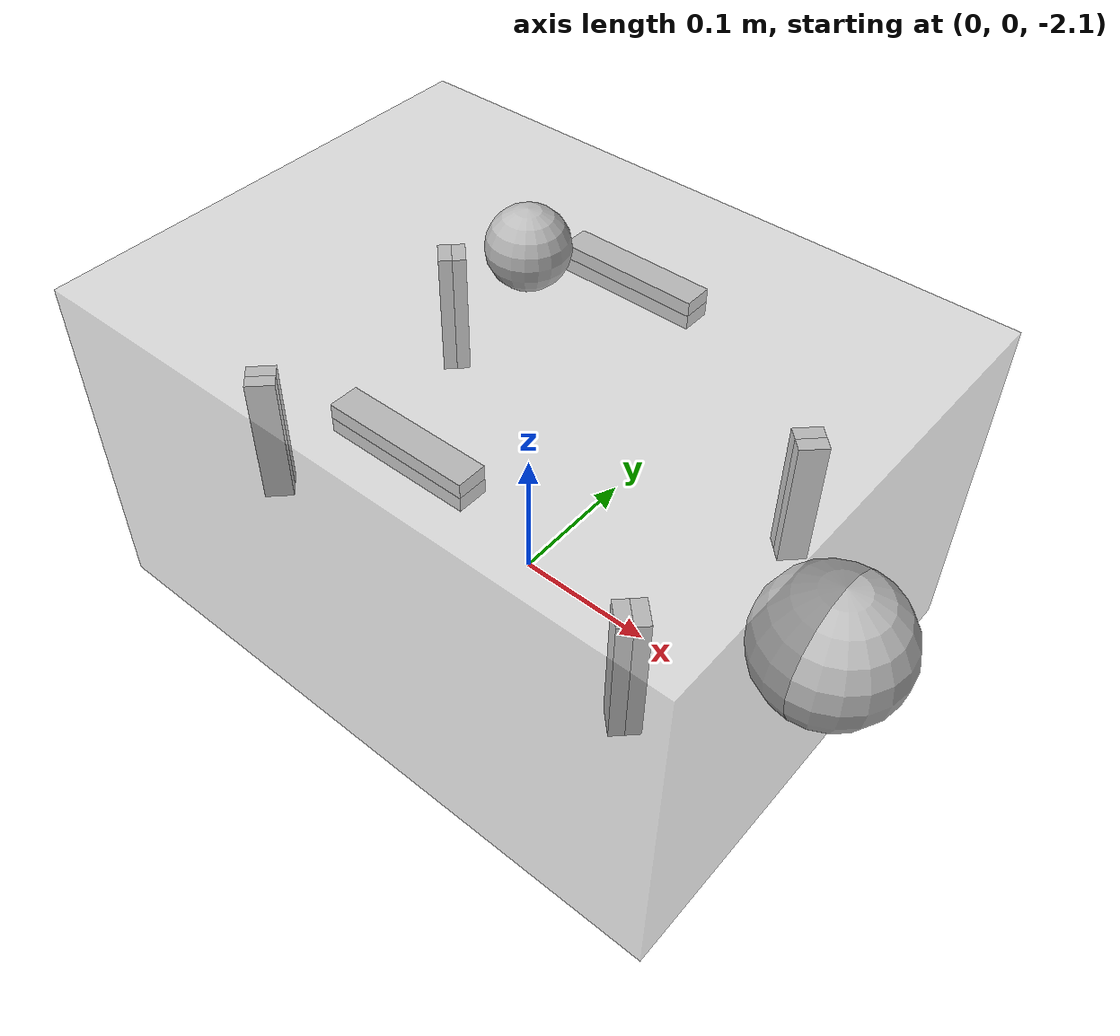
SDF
<sdf version="1.6">
 <world name="underwater">
  <plugin filename="ignition-gazebo-physics-system" name="ignition::gazebo::systems::Physics"/>
  <plugin filename="ignition-gazebo-sensors-system" name="ignition::gazebo::systems::Sensors">
   <render_engine>ogre2</render_engine>
   <background_color>0.8 0.8 0.8</background_color>
  </plugin>
  <plugin filename="ignition-gazebo-scene-broadcaster-system" name="ignition::gazebo::systems::SceneBroadcaster"/>
  <plugin filename="ignition-gazebo-user-commands-system" name="ignition::gazebo::systems::UserCommands"/>
  <plugin filename="libignition-gazebo-imu-system.so" name="ignition::gazebo::systems::Imu"/>
  <scene><ambient>1.0 1.0 1.0</ambient><background>0.8 0.8 0.8</background></scene>
  <include><uri>https://fuel.ignitionrobotics.org/1.0/OpenRobotics/models/Sun</uri></include>
  <include><uri>model://bluerov2</uri><pose>0 0 -2 0 0 0</pose></include>
 </world>
</sdf>

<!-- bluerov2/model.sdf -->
<sdf version="1.6">
  <model name="bluerov2">
    <pose>0 0 0 0 0 0</pose>

    <!-- BlueROV2 thruster reference: http://www.ardusub.com/introduction/features.html -->
    <!-- fluid_density: 1000 -->
    <!-- displaced_mass: 10.05 -->

    <link name="base_link">
      <inertial>
        <pose>0 0 -0.01 0 0 0</pose>
        <mass>10.0</mass>
        <inertia>
          <ixx>0.09378</ixx>
          <ixy>0</ixy>
          <ixz>0</ixz>
          <iyy>0.16868</iyy>
          <iyz>0</iyz>
          <izz>0.25578</izz>
        </inertia>
      </inertial>

      <collision name="collision">
        <geometry>
          <box>
            <size>0.457 0.338 0.065</size>
          </box>
        </geometry>
      </collision>

      <visual name="box">
        <transparency>0.5</transparency>
        <geometry>
          <box>
            <size>0.457 0.338 0.25</size>
          </box>
        </geometry>
      </visual>
      <visual name="top">
        <pose>0 0 0.17 0 0 0</pose>
        <geometry>
          <sphere>
            <radius>0.025</radius>
          </sphere>
        </geometry>
        <material>
          <emissive>1 1 0 0</emissive>
        </material>
      </visual>
      <visual name="dome">
        <pose>0.2285 0 0 0 0 0</pose>
        <geometry>
          <sphere>
            <radius>0.05</radius>
          </sphere>
        </geometry>
        <material>
          <emissive>0 1 0 0</emissive>
        </material>
      </visual>

      <!-- IMU sensor -->
      <sensor name="imu_sensor" type="imu">
        <!-- Transform from the Ignition Gazebo body frame (x-forward, y-left, z-up)
             to the ArduPilot body frame (x-forward, y-right, z-down) -->
        <pose>0 0 0 3.141592653589793 0 0</pose>
        <always_on>1</always_on>
        <update_rate>1000.0</update_rate>
      </sensor>
    </link>

    <link name="thruster1">
      <pose>0.15 -0.09 0 -1.5707963267948966 1.5707963267948966 -0.7853981633974483</pose>
      <visual name="thruster_front">
        <pose>0 0 0.005 0 0 0</pose>
        <geometry>
          <box>
            <size>0.1 0.02 0.01</size>
          </box>
        </geometry>
        <material>
          <emissive>0 0 1 0</emissive>
        </material>
      </visual>
      <visual name="thruster_back">
        <pose>0 0 -0.005 0 0 0</pose>
        <geometry>
          <box>
            <size>0.1 0.02 0.01</size>
          </box>
        </geometry>
        <material>
          <emissive>1 0 0 0</emissive>
        </material>
      </visual>
      <inertial>
        <mass>0.002</mass>
        <inertia>
          <ixx>0.001</ixx>
          <ixy>0</ixy>
          <ixz>0</ixz>
          <iyy>0.001</iyy>
          <iyz>0</iyz>
          <izz>0.001</izz>
        </inertia>
      </inertial>
    </link>

    <link name="thruster2">
      <pose>0.15 0.09 0 -1.5707963267948966 1.5707963267948966 -2.356194490192345</pose>
      <visual name="thruster_front">
        <pose>0 0 0.005 0 0 0</pose>
        <geometry>
          <box>
            <size>0.1 0.02 0.01</size>
          </box>
        </geometry>
        <material>
          <emissive>0 0 1 0</emissive>
        </material>
      </visual>
      <visual name="thruster_back">
        <pose>0 0 -0.005 0 0 0</pose>
        <geometry>
          <box>
            <size>0.1 0.02 0.01</size>
          </box>
        </geometry>
        <material>
          <emissive>1 0 0 0</emissive>
        </material>
      </visual>
      <inertial>
        <mass>0.002</mass>
        <inertia>
          <ixx>0.001</ixx>
          <ixy>0</ixy>
          <ixz>0</ixz>
          <iyy>0.001</iyy>
          <iyz>0</iyz>
          <izz>0.001</izz>
        </inertia>
      </inertial>
    </link>

    <link name="thruster3">
      <pose>-0.15 -0.09 0 -1.5707963267948966 1.5707963267948966 0.7853981633974483</pose>
      <visual name="thruster_front">
        <pose>0 0 0.005 0 0 0</pose>
        <geometry>
          <box>
            <size>0.1 0.02 0.01</size>
          </box>
        </geometry>
        <material>
          <emissive>0 0 1 0</emissive>
        </material>
      </visual>
      <visual name="thruster_back">
        <pose>0 0 -0.005 0 0 0</pose>
        <geometry>
          <box>
            <size>0.1 0.02 0.01</size>
          </box>
        </geometry>
        <material>
          <emissive>1 0 0 0</emissive>
        </material>
      </visual>
      <inertial>
        <mass>0.002</mass>
        <inertia>
          <ixx>0.001</ixx>
          <ixy>0</ixy>
          <ixz>0</ixz>
          <iyy>0.001</iyy>
          <iyz>0</iyz>
          <izz>0.001</izz>
        </inertia>
      </inertial>
    </link>

    <link name="thruster4">
      <pose>-0.15 0.09 0 -1.5707963267948966 1.5707963267948966 2.356194490192345</pose>
      <visual name="thruster_front">
        <pose>0 0 0.005 0 0 0</pose>
        <geometry>
          <box>
            <size>0.1 0.02 0.01</size>
          </box>
        </geometry>
        <material>
          <emissive>0 0 1 0</emissive>
        </material>
      </visual>
      <visual name="thruster_back">
        <pose>0 0 -0.005 0 0 0</pose>
        <geometry>
          <box>
            <size>0.1 0.02 0.01</size>
          </box>
        </geometry>
        <material>
          <emissive>1 0 0 0</emissive>
        </material>
      </visual>
      <inertial>
        <mass>0.002</mass>
        <inertia>
          <ixx>0.001</ixx>
          <ixy>0</ixy>
          <ixz>0</ixz>
          <iyy>0.001</iyy>
          <iyz>0</iyz>
          <izz>0.001</izz>
        </inertia>
      </inertial>
    </link>

    <link name="thruster5">
      <pose>0 -0.105 0.09 0 0 0</pose>
      <visual name="thruster_front">
        <pose>0 0 0.005 0 0 0</pose>
        <geometry>
          <box>
            <size>0.1 0.02 0.01</size>
          </box>
        </geometry>
        <material>
          <emissive>0 0 1 0</emissive>
        </material>
      </visual>
      <visual name="thruster_back">
        <pose>0 0 -0.005 0 0 0</pose>
        <geometry>
          <box>
            <size>0.1 0.02 0.01</size>
          </box>
        </geometry>
        <material>
          <emissive>1 0 0 0</emissive>
        </material>
      </visual>
      <inertial>
        <mass>0.002</mass>
        <inertia>
          <ixx>0.001</ixx>
          <ixy>0</ixy>
          <ixz>0</ixz>
          <iyy>0.001</iyy>
          <iyz>0</iyz>
          <izz>0.001</izz>
        </inertia>
      </inertial>
    </link>

    <link name="thruster6">
      <pose>0 0.105 0.09 0 0 0</pose>
      <visual name="thruster_front">
        <pose>0 0 0.005 0 0 0</pose>
        <geometry>
          <box>
            <size>0.1 0.02 0.01</size>
          </box>
        </geometry>
        <material>
          <emissive>0 0 1 0</emissive>
        </material>
      </visual>
      <visual name="thruster_back">
        <pose>0 0 -0.005 0 0 0</pose>
        <geometry>
          <box>
            <size>0.1 0.02 0.01</size>
          </box>
        </geometry>
        <material>
          <emissive>1 0 0 0</emissive>
        </material>
      </visual>
      <inertial>
        <mass>0.002</mass>
        <inertia>
          <ixx>0.001</ixx>
          <ixy>0</ixy>
          <ixz>0</ixz>
          <iyy>0.001</iyy>
          <iyz>0</iyz>
          <izz>0.001</izz>
        </inertia>
      </inertial>
    </link>

    <joint name="thruster1_joint" type="revolute">
      <parent>base_link</parent>
      <child>thruster1</child>
      <axis>
        <xyz>0 0 -1</xyz>
      </axis>
    </joint>

    <joint name="thruster2_joint" type="revolute">
      <parent>base_link</parent>
      <child>thruster2</child>
      <axis>
        <xyz>0 0 -1</xyz>
      </axis>
    </joint>

    <joint name="thruster3_joint" type="revolute">
      <parent>base_link</parent>
      <child>thruster3</child>
      <axis>
        <xyz>0 0 -1</xyz>
      </axis>
    </joint>

    <joint name="thruster4_joint" type="revolute">
      <parent>base_link</parent>
      <child>thruster4</child>
      <axis>
        <xyz>0 0 -1</xyz>
      </axis>
    </joint>

    <joint name="thruster5_joint" type="revolute">
      <parent>base_link</parent>
      <child>thruster5</child>
      <axis>
        <xyz>0 0 -1</xyz>
      </axis>
    </joint>

    <joint name="thruster6_joint" type="revolute">
      <parent>base_link</parent>
      <child>thruster6</child>
      <axis>
        <xyz>0 0 -1</xyz>
      </axis>
    </joint>

    <!-- Thrusters -->
    <plugin
        filename="ignition-gazebo-thruster-system"
        name="ignition::gazebo::systems::Thruster">
      <namespace>bluerov2</namespace>
      <joint_name>thruster1_joint</joint_name>
      <thrust_coefficient>0.02</thrust_coefficient>
      <fluid_density>1000</fluid_density>
      <propeller_diameter>0.1</propeller_diameter>
      <velocity_control>0</velocity_control>
      <use_angvel_cmd>0</use_angvel_cmd>
    </plugin>
    <plugin
        filename="ignition-gazebo-thruster-system"
        name="ignition::gazebo::systems::Thruster">
      <namespace>bluerov2</namespace>
      <joint_name>thruster2_joint</joint_name>
      <thrust_coefficient>0.02</thrust_coefficient>
      <fluid_density>1000</fluid_density>
      <propeller_diameter>0.1</propeller_diameter>
      <velocity_control>0</velocity_control>
      <use_angvel_cmd>0</use_angvel_cmd>
    </plugin>
    <plugin
        filename="ignition-gazebo-thruster-system"
        name="ignition::gazebo::systems::Thruster">
      <namespace>bluerov2</namespace>
      <joint_name>thruster3_joint</joint_name>
      <!-- Reverse spin to balance torque -->
      <thrust_coefficient>-0.02</thrust_coefficient>
      <fluid_density>1000</fluid_density>
      <propeller_diameter>0.1</propeller_diameter>
      <velocity_control>0</velocity_control>
      <use_angvel_cmd>0</use_angvel_cmd>
    </plugin>
    <plugin
        filename="ignition-gazebo-thruster-system"
        name="ignition::gazebo::systems::Thruster">
      <namespace>bluerov2</namespace>
      <joint_name>thruster4_joint</joint_name>
      <!-- Reverse spin to balance torque -->
      <thrust_coefficient>-0.02</thrust_coefficient>
      <fluid_density>1000</fluid_density>
      <propeller_diameter>0.1</propeller_diameter>
      <velocity_control>0</velocity_control>
      <use_angvel_cmd>0</use_angvel_cmd>
    </plugin>
    <plugin
        filename="ignition-gazebo-thruster-system"
        name="ignition::gazebo::systems::Thruster">
      <namespace>bluerov2</namespace>
      <joint_name>thruster5_joint</joint_name>
      <thrust_coefficient>0.02</thrust_coefficient>
      <fluid_density>1000</fluid_density>
      <propeller_diameter>0.1</propeller_diameter>
      <velocity_control>0</velocity_control>
      <use_angvel_cmd>0</use_angvel_cmd>
    </plugin>
    <plugin
        filename="ignition-gazebo-thruster-system"
        name="ignition::gazebo::systems::Thruster">
      <namespace>bluerov2</namespace>
      <joint_name>thruster6_joint</joint_name>
      <!-- Reverse spin to balance torque -->
      <thrust_coefficient>-0.02</thrust_coefficient>
      <fluid_density>1000</fluid_density>
      <propeller_diameter>0.1</propeller_diameter>
      <velocity_control>0</velocity_control>
      <use_angvel_cmd>0</use_angvel_cmd>
    </plugin>

    <!-- gz-marine: hydrodynamics -->
    <plugin
        filename="gazebo_marine1-hydrodynamics-system"
        name="ignition::gazebo::systems::Hydrodynamics">
    </plugin>

    <!-- ardupilot -->
    <plugin name="ArduPilotPlugin" filename="libArduPilotPlugin.so">
      <fdm_addr>127.0.0.1</fdm_addr>
      <fdm_port_in>9002</fdm_port_in>
      <connectionTimeoutMaxCount>5</connectionTimeoutMaxCount>
      <lock_step>1</lock_step>

      <!-- Transform from the Ignition Gazebo body frame (x-forward, y-left, z-up)
           to the ArduPilot body frame (x-forward, y-right, z-down) -->
      <modelXYZToAirplaneXForwardZDown>0 0 0 3.141592653589793 0 0</modelXYZToAirplaneXForwardZDown>

      <!-- Transform from the Ignition Gazebo world frame (ENU)
           to the ArduPilot world frame (NED) -->
      <gazeboXYZToNED>0 0 0 3.141592653589793 0 1.5707963267948966</gazeboXYZToNED>

      <imuName>imu_sensor</imuName>

      <control channel="0">
        <jointName>thruster1_joint</jointName>
        <servo_min>1100</servo_min>
        <servo_max>1900</servo_max>
        <type>COMMAND</type>
        <cmd_topic>/model/bluerov2/joint/thruster1_joint/cmd_thrust</cmd_topic>
        <offset>-0.5</offset>
        <multiplier>100</multiplier>
      </control>
      <control channel="1">
        <jointName>thruster2_joint</jointName>
        <servo_min>1100</servo_min>
        <servo_max>1900</servo_max>
        <type>COMMAND</type>
        <cmd_topic>/model/bluerov2/joint/thruster2_joint/cmd_thrust</cmd_topic>
        <offset>-0.5</offset>
        <multiplier>100</multiplier>
      </control>
      <control channel="2">
        <jointName>thruster3_joint</jointName>
        <servo_min>1100</servo_min>
        <servo_max>1900</servo_max>
        <type>COMMAND</type>
        <cmd_topic>/model/bluerov2/joint/thruster3_joint/cmd_thrust</cmd_topic>
        <offset>-0.5</offset>
        <multiplier>100</multiplier>
      </control>
      <control channel="3">
        <jointName>thruster4_joint</jointName>
        <servo_min>1100</servo_min>
        <servo_max>1900</servo_max>
        <type>COMMAND</type>
        <cmd_topic>/model/bluerov2/joint/thruster4_joint/cmd_thrust</cmd_topic>
        <offset>-0.5</offset>
        <multiplier>100</multiplier>
      </control>
      <control channel="4">
        <jointName>thruster5_joint</jointName>
        <servo_min>1100</servo_min>
        <servo_max>1900</servo_max>
        <type>COMMAND</type>
        <cmd_topic>/model/bluerov2/joint/thruster5_joint/cmd_thrust</cmd_topic>
        <offset>-0.5</offset>
        <multiplier>100</multiplier>
      </control>
      <control channel="5">
        <jointName>thruster6_joint</jointName>
        <servo_min>1100</servo_min>
        <servo_max>1900</servo_max>
        <type>COMMAND</type>
        <cmd_topic>/model/bluerov2/joint/thruster6_joint/cmd_thrust</cmd_topic>
        <offset>-0.5</offset>
        <multiplier>100</multiplier>
      </control>
    </plugin>

  </model>
</sdf>
